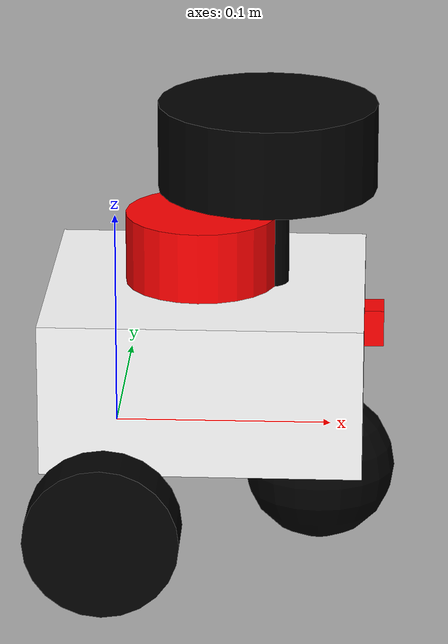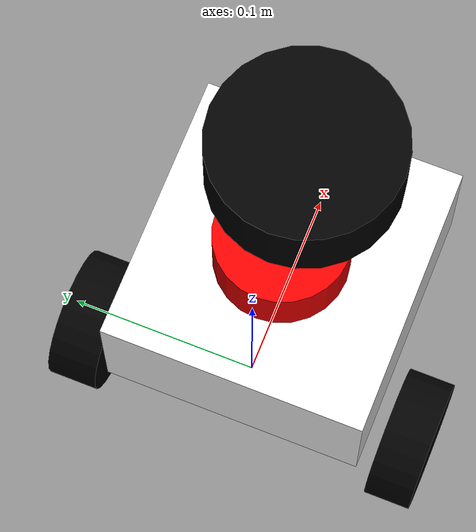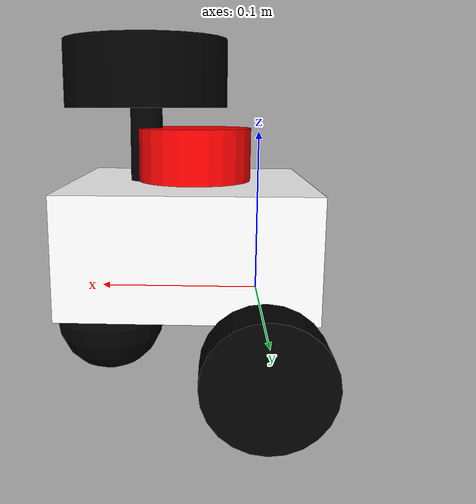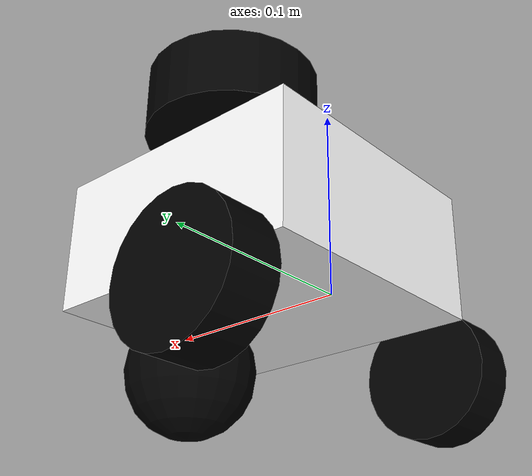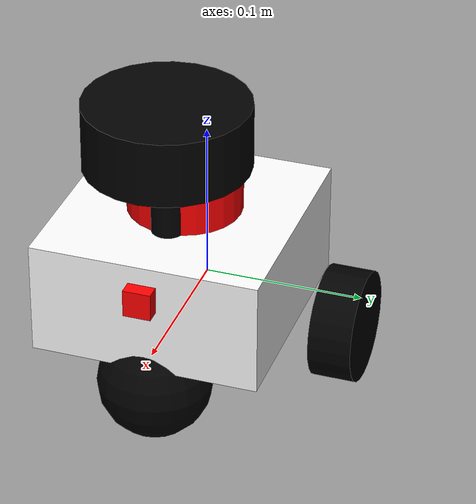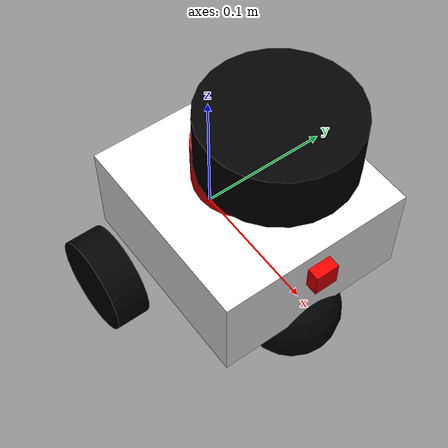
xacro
<?xml version="1.0"?>

<!-- autoJetsonBot/src/robot_body/urdf/robot.xacro -->

<robot xmlns:xacro="http://www.ros.org/wiki/xacro"  name="robot">

    <xacro:arg name="use_ros2_control" default="true"/>
    <xacro:arg name="sim_mode" default="false"/>

    <xacro:include filename="robot_core.xacro" />

    <xacro:if value="$(arg use_ros2_control)">
        <xacro:include filename="ros2_control.xacro" />
    </xacro:if>
    <xacro:unless value="$(arg use_ros2_control)">
        <xacro:include filename="gazebo_control.xacro" />
    </xacro:unless>
    <xacro:include filename="lidar.xacro" />
    <xacro:include filename="camera.xacro" />

</robot>

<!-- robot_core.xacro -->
<robot xmlns:xacro="http://www.ros.org/wiki/xacro" >
<!-- /home/jetson/myspace/autoJetsonBot/src/my_robot_launch/urdf/robot_core.xacro -->
<xacro:include filename="inertial_macros.xacro" />

    <!-- COLORS FOR ROBOT PARTS -->
    <material name="grey">
        <color rgba="0.5 0.5 0.5 1"/>
    </material>
    <material name="red">
        <color rgba="1 0 0 1"/>
    </material>
    <material name="green">
        <color rgba="0 1 0 1"/>
    </material>
    <material name="blue">
        <color rgba="0 0 1 1"/>
    </material>
    <material name="yellow">
        <color rgba="1 1 0 1"/>
    </material>
    <material name="orange">
        <color rgba="1 0.5 0 1"/>
    </material>
    <material name="purple">
        <color rgba="0.5 0 0.5 1"/>
    </material>
    <material name="black">
        <color rgba="0 0 0 1"/>
    </material>
    <material name="white">
        <color rgba="1 1 1 1"/>
    </material>

    <!-- ROBOT BASE LINK -->
    <link name="base_link">
    </link>

    <!-- BASE_FOOTPRINT LINK -->

    <joint name="base_footprint_joint" type="fixed">
        <parent link="base_link"/>
        <child link="base_footprint"/>
        <origin xyz="0 0 0" rpy="0 0 0"/>
    </joint>

    <link name="base_footprint">
    </link>

    <!-- ROBOT CHASSIS LINK-->
    <joint name="chassis_joint" type="fixed">
        <origin xyz="-0.03 0 0" rpy="0 0 0"/>
        <parent link="base_link"/>
        <child link="chassis"/>
    </joint>

    <!-- ROBOT CHASSIS -->
    <link name="chassis">
        <visual>
            <origin xyz="0.0725 0 0.035" rpy="0 0 0"/>
            <geometry>
                <box size="0.145 0.14 0.07"/>
            </geometry>
            <material name="white"/>
        </visual>
        <collision>
            <origin xyz="0.0725 0 0.035" rpy="0 0 0"/>
            <geometry>
                <box size="0.145 0.14 0.07"/>
            </geometry>
        </collision>
        <xacro:inertial_box mass="0.5" x="0.145" y="0.14" z="0.07">
            <origin xyz="0.0725 0 0.035" rpy="0 0 0"/>
        </xacro:inertial_box>
    </link>
    <gazebo reference="chassis">
        <material>Gazebo/White</material>
    </gazebo>

    <!-- ROBOT WHEELS -->

    <!-- LEFT WHEEL -->
    <joint name="left_wheel_joint" type="continuous">
        <origin xyz="0 0.09 -0.02" rpy="-${pi/2} 0 0"/>
        <parent link="base_link"/>
        <child link="left_wheel"/>
        <axis xyz="0 0 1"/>
    </joint>

    <link name="left_wheel">
        <visual>
            <origin xyz="0 0 0" rpy="0 0 0"/>
            <geometry>
                <cylinder radius="0.035" length="0.027"/>
            </geometry>
            <material name="black"/>
        </visual>
        <collision>
            <origin xyz="0 0 0" rpy="0 0 0"/>
            <geometry>
                <cylinder radius="0.035" length="0.027"/>
            </geometry>
        </collision>
        <xacro:inertial_cylinder mass="0.1" length="0.027" radius="0.035">
            <origin xyz="0 0 0" rpy="0 0 0"/>
        </xacro:inertial_cylinder>

    </link>
    <gazebo reference="left_wheel">
        <material>Gazebo/Black</material>
    </gazebo>

    <!-- RIGHT WHEEL -->
    <joint name="right_wheel_joint" type="continuous">
        <origin xyz="0 -0.09 -0.02" rpy="${pi/2} 0 0"/>
        <parent link="base_link"/>
        <child link="right_wheel"/>
        <axis xyz="0 0 -1"/>
    </joint>

    <link name="right_wheel">
        <visual>
            <origin xyz="0 0 0" rpy="0 0 0"/>
            <geometry>
                <cylinder radius="0.035" length="0.025"/>
            </geometry>
            <material name="black"/>
        </visual>
        <collision>
            <origin xyz="0 0 0" rpy="0 0 0"/>
            <geometry>
                <cylinder radius="0.035" length="0.025"/>
            </geometry>
        </collision>
        <xacro:inertial_cylinder mass="0.1" length="0.025" radius="0.035">
            <origin xyz="0 0 0" rpy="0 0 0"/>
        </xacro:inertial_cylinder>
    </link>
    <gazebo reference="right_wheel">
        <material>Gazebo/Black</material>
    </gazebo>

    <!-- CASTER WHEEL -->
    <joint name="caster_wheel_joint" type="fixed">
        <origin xyz="0.095 0 -0.02" rpy="0 0 0"/>
        <parent link="base_link"/>
        <child link="caster_wheel"/>
    </joint>

    <link name="caster_wheel">
        <visual>
            <origin xyz="0 0 0" rpy="0 0 0"/>
            <geometry>
                <sphere radius="0.035"/>
            </geometry>
            <material name="black"/>
        </visual>
        <collision>
            <origin xyz="0 0 0" rpy="0 0 0"/>
            <geometry>
                <sphere radius="0.035"/>
            </geometry>
        </collision>
        <xacro:inertial_sphere mass="0.1" radius="0.035">
            <origin xyz="0 0 0" rpy="0 0 0"/>
        </xacro:inertial_sphere>
    </link>
    <gazebo reference="caster_wheel">
        <material>Gazebo/Black</material>
        <mu1 value="0.001"/>
        <mu2 value="0.001"/>
    </gazebo>

    <!-- ROBOT LIDAR -->
    <joint name="lidar_joint" type="fixed">
        <origin xyz="0.07 0 0.07" rpy="0 0 0"/>
        <parent link="chassis"/>
        <child link="lidar"/>
    </joint>

    <link name="lidar">
        <visual>
            <origin xyz="0 0 0" rpy="0 0 0"/>

            <geometry>
                <cylinder radius="0.035" length="0.065"/>
            </geometry>
            <material name="red"/>
        </visual>
        <collision>
            <origin xyz="0 0 0" rpy="0 0 0"/>

            <geometry>
                <cylinder radius="0.035" length="0.065"/>
            </geometry>
        </collision>
    </link>
    <gazebo reference="lidar">
        <material>Gazebo/Red</material>
    </gazebo>

</robot>

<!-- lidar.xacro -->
<robot xmlns:xacro="http://www.ros.org/wiki/xacro" >
<!-- /home/jetson/myspace/autoJetsonBot/src/my_robot_launch/urdf/lidar.xacro -->

    <joint name="laser_joint" type="fixed">
        <parent link="chassis"/>
        <child link="laser_frame"/>
        <origin xyz="0.1 0 0.135" rpy="0 0 0"/>
    </joint>

    <link name="laser_frame">
        <visual>
            <geometry>
                <cylinder radius="0.05" length="0.04"/>
            </geometry>
            <material name="black"/>
        </visual>
        <visual>
            <origin xyz="0 0 -0.05"/>
            <geometry>
                <cylinder radius="0.01" length="0.1"/>
            </geometry>
            <material name="black"/>
        </visual>
        <collision>
            <geometry>
                <cylinder radius="0.05" length="0.04"/>
            </geometry>
        </collision>
        <xacro:inertial_cylinder mass="0.1" length="0.04" radius="0.05">
            <origin xyz="0 0 0" rpy="0 0 0"/>
        </xacro:inertial_cylinder>
    </link>

    <gazebo reference="laser_frame">
        <material>Gazebo/Black</material>

        <sensor name="laser" type="ray">
            <pose> 0 0 0 0 0 0 </pose>
            <visualize>true</visualize>
            <update_rate>10</update_rate>
            <ray>
                <scan>
                    <horizontal>
                        <samples>360</samples>
                        <min_angle>-3.14</min_angle>
                        <max_angle>3.14</max_angle>
                    </horizontal>
                </scan>
                <range>
                    <min>0.3</min>
                    <max>12</max>
                </range>
            </ray>
            <plugin name="laser_controller" filename="libgazebo_ros_ray_sensor.so">
                <ros>
                    <argument>~/out:=scan</argument>
                </ros>
                <output_type>sensor_msgs/LaserScan</output_type>
                <frame_name>laser_frame</frame_name>
            </plugin>
        </sensor>
    </gazebo>

</robot>

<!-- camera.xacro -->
<!-- camera-->
<robot xmlns:xacro="http://www.ros.org/wiki/xacro" >

    <joint name="camera_joint" type="fixed">
        <origin xyz="0.1455 0 0.05" rpy="0 0 0"/>
        <parent link="chassis"/>
        <child link="camera_link"/>
    </joint>

    <link name="camera_link">
        <visual>
            <origin xyz="0 0 0" rpy="0 0 0"/>
            <geometry>
                <box size="0.017 0.017 0.017"/>
            </geometry>
            <material name="red"/>
        </visual>
        <xacro:inertial_cylinder mass="0.1" radius="0.035" length="0.025">
            <origin xyz="0 0 0" rpy="0 0 0"/>
        </xacro:inertial_cylinder>
    </link>

    <joint name="camera_optical_joint" type="fixed">
        <origin xyz="0.005 0 0" rpy="${-pi/2} 0 ${-pi/2}"/>
        <parent link="camera_link"/>
        <child link="camera_optical_link"/>
    </joint>

    <link name="camera_optical_link"></link>

    <gazebo reference="camera_link">
        <material>Gazebo/Red</material>
        <sensor name="camera" type="camera">
            <pose>0 0 0 0 0 0</pose>
            <visualize>true</visualize>
            <update_rate>10</update_rate>
            <camera>
                <horizontal_fov>1.3962634</horizontal_fov>
                <image>
                    <width>640</width>
                    <height>480</height>
                    <format>R8G8B8</format>
                </image>
                <clip>
                    <near>0.1</near>
                    <far>100</far>
                </clip>
            </camera>
            <plugin name="camera_controller" filename="libgazebo_ros_camera.so">
                <frame_name>camera_optical_link</frame_name>
            </plugin>
        </sensor>
    </gazebo>
</robot>
